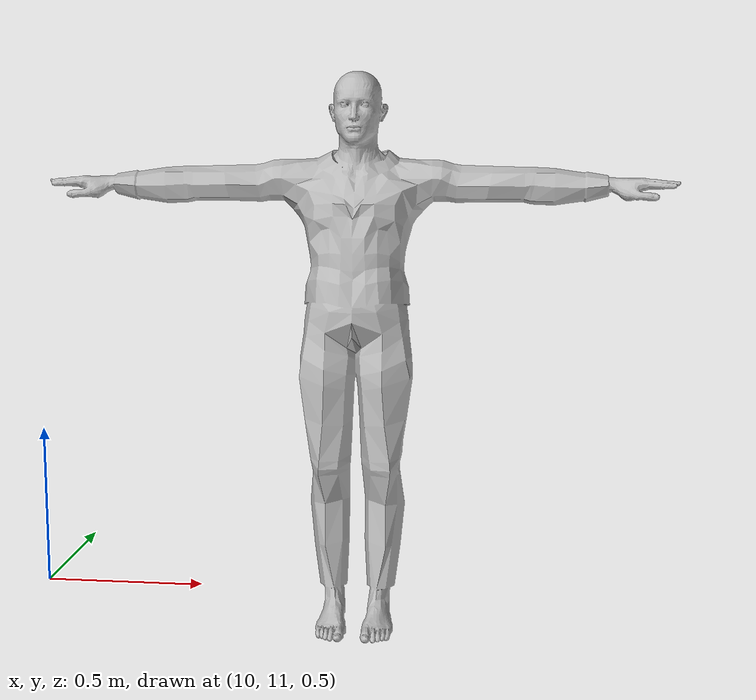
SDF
<?xml version="1.0"?>
<sdf version="1.6">
  <!-- An obstacle -->
  <model name="obstacle">
    <pose>11 11 1.25 0 0 0</pose>
    <link name="link_obstacle">
      <gravity>false</gravity>
      <collision name="collision_obstacle">
        <geometry>
          <mesh>
            <uri>model://obstacle/meshes/actor.dae</uri>
          </mesh>
        </geometry>
      </collision>
      <visual name="visual_obstacle">
        <geometry>
          <mesh>
            <uri>model://obstacle/meshes/actor.dae</uri>
          </mesh>
        </geometry>
      </visual>
    </link>
  </model>
</sdf>
